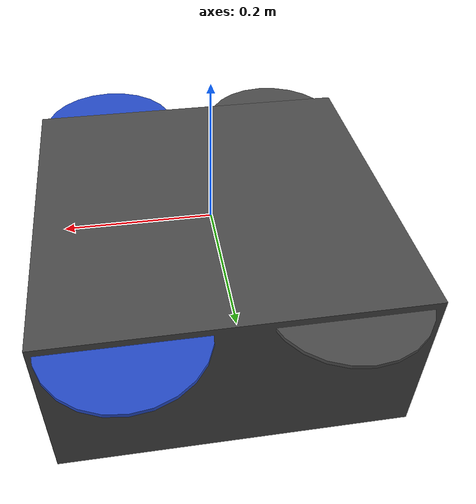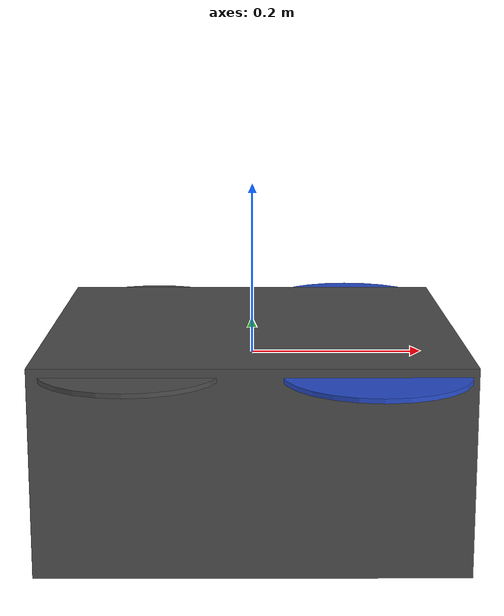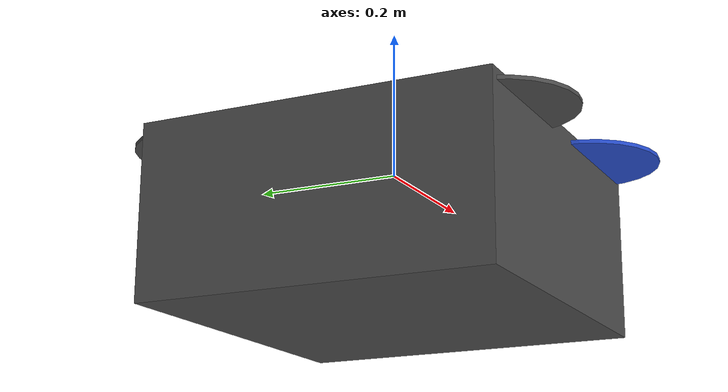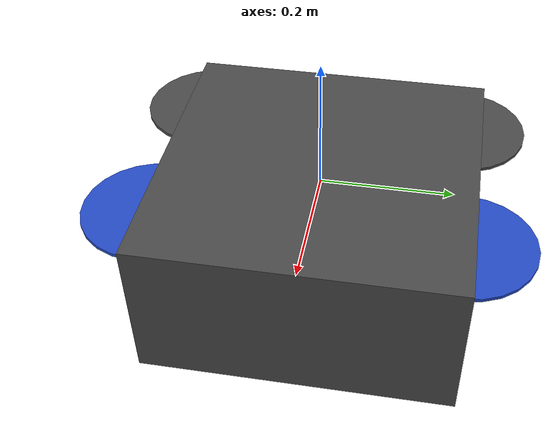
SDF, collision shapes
<?xml version='1.0'?>
<sdf version='1.6'>
  <model name='iris_with_lidar'>
    <pose>0 0 0 0 0 0</pose>
      <include>
        <uri>model://iris_with_standoffs</uri>
        <pose>0 0 0 0 0 0</pose>
      </include>

      <!-- Kinect Payload -->
      <include>
        <uri>model://kinect_depth</uri>
        <pose>0.03 0 -0.05 0 0.6 0</pose>
      </include>
      <joint name="cam_mount" type="fixed">
        <child>kinect::camera_link</child>
        <parent>iris::base_link</parent>
        <axis>
          <xyz>0 0 1</xyz>
          <limit>
            <upper>0</upper>
            <lower>0</lower>
          </limit>
        </axis>
      </joint>

      <!-- For Another Lidar Payload -->
    </model>
  </sdf>

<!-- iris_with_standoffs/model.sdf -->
<sdf version='1.6'>
  <model name='iris'>
    <pose>0 0 0.194923 0 0 0</pose>
    <link name='base_link'>
      <velocity_decay>
        <linear>0.0</linear>
        <angular>0.0</angular>
      </velocity_decay>
      <inertial>
        <pose>0 0 0 0 0 0</pose>
        <mass>1.5</mass>
        <inertia>
          <ixx>0.008</ixx>
          <ixy>0</ixy>
          <ixz>0</ixz>
          <iyy>0.015</iyy>
          <iyz>0</iyz>
          <izz>0.017</izz>
        </inertia>
      </inertial>
      <collision name='base_link_collision'>
        <pose>0 0 -0.08 0 0 0</pose>
        <geometry>
          <box>
            <size>0.47 0.47 0.23</size>
          </box>
        </geometry>
        <surface>
          <contact>
            <ode>
              <max_vel>100.0</max_vel>
              <min_depth>0.001</min_depth>
            </ode>
          </contact>
          <friction>
            <ode>
              <mu>1.0</mu>
              <mu2>1.0</mu2>
            </ode>
          </friction>
        </surface>
      </collision>
      <visual name='base_link_visual'>
        <geometry>
          <mesh>
            <uri>model://iris_with_standoffs/meshes/iris.dae</uri>
          </mesh>
        </geometry>
        <material>
          <script>
            <name>Gazebo/DarkGrey</name>
          </script>
        </material>
      </visual>

      <visual name='front_left_leg_visual'>
        <pose>0.123 0.22 -0.11 0 0 0</pose>
        <geometry>
          <cylinder>
            <radius>0.005</radius>
            <length>0.17</length>
          </cylinder>
        </geometry>
        <material>
          <script>
            <name>Gazebo/FlatBlack</name>
            <uri>file://media/materials/scripts/gazebo.material</uri>
          </script>
        </material>
      </visual>
      <visual name='front_right_leg_visual'>
        <pose>0.123 -0.22 -0.11 0 0 0</pose>
        <geometry>
          <cylinder>
            <radius>0.005</radius>
            <length>0.17</length>
          </cylinder>
        </geometry>
        <material>
          <script>
            <name>Gazebo/FlatBlack</name>
            <uri>file://media/materials/scripts/gazebo.material</uri>
          </script>
        </material>
      </visual>
      <visual name='rear_left_leg_visual'>
        <pose>-0.140 0.21 -0.11 0 0 0</pose>
        <geometry>
          <cylinder>
            <radius>0.005</radius>
            <length>0.17</length>
          </cylinder>
        </geometry>
        <material>
          <script>
            <name>Gazebo/FlatBlack</name>
            <uri>file://media/materials/scripts/gazebo.material</uri>
          </script>
        </material>
      </visual>
      <visual name='rear_right_leg_visual'>
        <pose>-0.140 -0.21 -0.11 0 0 0</pose>
        <geometry>
          <cylinder>
            <radius>0.005</radius>
            <length>0.17</length>
          </cylinder>
        </geometry>
        <material>
          <script>
            <name>Gazebo/FlatBlack</name>
            <uri>file://media/materials/scripts/gazebo.material</uri>
          </script>
        </material>
      </visual>
    </link>
    <link name='iris/ground_truth/odometry_sensorgt_link'>
      <pose>0 0 0 0 -0 0</pose>
      <inertial>
        <pose>0 0 0 0 -0 0</pose>
        <mass>0.15</mass>
        <inertia>
          <ixx>0.0001</ixx>
          <ixy>0</ixy>
          <ixz>0</ixz>
          <iyy>0.0002</iyy>
          <iyz>0</iyz>
          <izz>0.0002</izz>
        </inertia>
      </inertial>
    </link>
    <joint name='iris/ground_truth/odometry_sensorgt_joint' type='revolute'>
      <child>iris/ground_truth/odometry_sensorgt_link</child>
      <parent>base_link</parent>
      <axis>
        <xyz>0 0 1</xyz>
        <limit>
          <lower>0</lower>
          <upper>0</upper>
          <effort>0</effort>
          <velocity>0</velocity>
        </limit>
        <dynamics>
          <damping>1.0</damping>
        </dynamics>
        <use_parent_model_frame>1</use_parent_model_frame>
      </axis>
      <physics>
        <ode>
          <implicit_spring_damper>1</implicit_spring_damper>
        </ode>
      </physics>
    </joint>
    <link name='iris/imu_link'>
      <inertial>
        <pose>0 0 0 0 0 0</pose>
        <mass>0.15</mass>
        <inertia>
          <ixx>0.00001</ixx>
          <ixy>0</ixy>
          <ixz>0</ixz>
          <iyy>0.00002</iyy>
          <iyz>0</iyz>
          <izz>0.00002</izz>
        </inertia>
      </inertial>
      <sensor name="imu_sensor" type="imu">
        <pose>0 0 0 3.141593 0 0</pose>
        <always_on>1</always_on>
        <update_rate>1000.0</update_rate>
      </sensor>
    </link>
    <joint name='iris/imu_joint' type='revolute'>
      <child>iris/imu_link</child>
      <parent>base_link</parent>
      <axis>
        <xyz>0 0 1</xyz>
        <limit>
          <lower>0</lower>
          <upper>0</upper>
          <effort>0</effort>
          <velocity>0</velocity>
        </limit>
        <dynamics>
          <damping>1.0</damping>
        </dynamics>
        <use_parent_model_frame>1</use_parent_model_frame>
      </axis>
      <physics>
        <ode>
          <implicit_spring_damper>1</implicit_spring_damper>
        </ode>
      </physics>
    </joint>
    <link name='rotor_0'>
      <pose>0.13 -0.22 0.023 0 -0 0</pose>
      <inertial>
        <pose>0 0 0 0 -0 0</pose>
        <mass>0.025</mass>
        <inertia>
          <ixx>9.75e-06</ixx>
          <ixy>0</ixy>
          <ixz>0</ixz>
          <iyy>0.000166704</iyy>
          <iyz>0</iyz>
          <izz>0.000166704</izz>
        </inertia>
      </inertial>
      <collision name='rotor_0_collision'>
        <pose>0 0 0 0 -0 0</pose>
        <geometry>
          <cylinder>
            <length>0.005</length>
            <radius>0.1</radius>
          </cylinder>
        </geometry>
        <surface>
          <contact>
            <ode/>
          </contact>
          <friction>
            <ode/>
          </friction>
        </surface>
      </collision>
      <visual name='rotor_0_visual'>
        <pose>0 0 0 0 -0 0</pose>
        <geometry>
          <mesh>
            <scale>1 1 1</scale>
            <uri>model://iris_with_standoffs/meshes/iris_prop_ccw.dae</uri>
          </mesh>
        </geometry>
        <material>
          <script>
            <name>Gazebo/Blue</name>
            <uri>__default__</uri>
          </script>
        </material>
      </visual>
      <gravity>1</gravity>
      <velocity_decay/>
      <self_collide>0</self_collide>
    </link>
    <joint name='rotor_0_joint' type='revolute'>
      <child>rotor_0</child>
      <parent>base_link</parent>
      <axis>
        <xyz>0 0 1</xyz>
        <limit>
          <lower>-1e+16</lower>
          <upper>1e+16</upper>
        </limit>
        <dynamics>
          <damping>0.004</damping>
        </dynamics>
        <use_parent_model_frame>1</use_parent_model_frame>
      </axis>
      <physics>
        <ode>
          <implicit_spring_damper>1</implicit_spring_damper>
        </ode>
      </physics>
    </joint>
    <link name='rotor_1'>
      <pose>-0.13 0.2 0.023 0 -0 0</pose>
      <inertial>
        <pose>0 0 0 0 -0 0</pose>
        <mass>0.025</mass>
        <inertia>
          <ixx>9.75e-06</ixx>
          <ixy>0</ixy>
          <ixz>0</ixz>
          <iyy>0.000166704</iyy>
          <iyz>0</iyz>
          <izz>0.000166704</izz>
        </inertia>
      </inertial>
      <collision name='rotor_1_collision'>
        <pose>0 0 0 0 -0 0</pose>
        <geometry>
          <cylinder>
            <length>0.005</length>
            <radius>0.1</radius>
          </cylinder>
        </geometry>
        <surface>
          <contact>
            <ode/>
          </contact>
          <friction>
            <ode/>
          </friction>
        </surface>
      </collision>
      <visual name='rotor_1_visual'>
        <pose>0 0 0 0 -0 0</pose>
        <geometry>
          <mesh>
            <scale>1 1 1</scale>
            <uri>model://iris_with_standoffs/meshes/iris_prop_ccw.dae</uri>
          </mesh>
        </geometry>
        <material>
          <script>
            <name>Gazebo/DarkGrey</name>
            <uri>__default__</uri>
          </script>
        </material>
      </visual>
      <gravity>1</gravity>
      <velocity_decay/>
      <self_collide>0</self_collide>
    </link>
    <joint name='rotor_1_joint' type='revolute'>
      <child>rotor_1</child>
      <parent>base_link</parent>
      <axis>
        <xyz>0 0 1</xyz>
        <limit>
          <lower>-1e+16</lower>
          <upper>1e+16</upper>
        </limit>
        <dynamics>
          <damping>0.004</damping>
        </dynamics>
        <use_parent_model_frame>1</use_parent_model_frame>
      </axis>
      <physics>
        <ode>
          <implicit_spring_damper>1</implicit_spring_damper>
        </ode>
      </physics>
    </joint>
    <link name='rotor_2'>
      <pose>0.13 0.22 0.023 0 -0 0</pose>
      <inertial>
        <pose>0 0 0 0 -0 0</pose>
        <mass>0.025</mass>
        <inertia>
          <ixx>9.75e-06</ixx>
          <ixy>0</ixy>
          <ixz>0</ixz>
          <iyy>0.000166704</iyy>
          <iyz>0</iyz>
          <izz>0.000166704</izz>
        </inertia>
      </inertial>
      <collision name='rotor_2_collision'>
        <pose>0 0 0 0 -0 0</pose>
        <geometry>
          <cylinder>
            <length>0.005</length>
            <radius>0.1</radius>
          </cylinder>
        </geometry>
        <surface>
          <contact>
            <ode/>
          </contact>
          <friction>
            <ode/>
          </friction>
        </surface>
      </collision>
      <visual name='rotor_2_visual'>
        <pose>0 0 0 0 -0 0</pose>
        <geometry>
          <mesh>
            <scale>1 1 1</scale>
            <uri>model://iris_with_standoffs/meshes/iris_prop_cw.dae</uri>
          </mesh>
        </geometry>
        <material>
          <script>
            <name>Gazebo/Blue</name>
            <uri>__default__</uri>
          </script>
        </material>
      </visual>
      <gravity>1</gravity>
      <velocity_decay/>
      <self_collide>0</self_collide>
    </link>
    <joint name='rotor_2_joint' type='revolute'>
      <child>rotor_2</child>
      <parent>base_link</parent>
      <axis>
        <xyz>0 0 1</xyz>
        <limit>
          <lower>-1e+16</lower>
          <upper>1e+16</upper>
        </limit>
        <dynamics>
          <damping>0.004</damping>
        </dynamics>
        <use_parent_model_frame>1</use_parent_model_frame>
      </axis>
      <physics>
        <ode>
          <implicit_spring_damper>1</implicit_spring_damper>
        </ode>
      </physics>
    </joint>
    <link name='rotor_3'>
      <pose>-0.13 -0.2 0.023 0 -0 0</pose>
      <inertial>
        <pose>0 0 0 0 -0 0</pose>
        <mass>0.025</mass>
        <inertia>
          <ixx>9.75e-06</ixx>
          <ixy>0</ixy>
          <ixz>0</ixz>
          <iyy>0.000166704</iyy>
          <iyz>0</iyz>
          <izz>0.000166704</izz>
        </inertia>
      </inertial>
      <collision name='rotor_3_collision'>
        <pose>0 0 0 0 -0 0</pose>
        <geometry>
          <cylinder>
            <length>0.005</length>
            <radius>0.1</radius>
          </cylinder>
        </geometry>
        <surface>
          <contact>
            <ode/>
          </contact>
          <friction>
            <ode/>
          </friction>
        </surface>
      </collision>
      <visual name='rotor_3_visual'>
        <pose>0 0 0 0 -0 0</pose>
        <geometry>
          <mesh>
            <scale>1 1 1</scale>
            <uri>model://iris_with_standoffs/meshes/iris_prop_cw.dae</uri>
          </mesh>
        </geometry>
        <material>
          <script>
            <name>Gazebo/DarkGrey</name>
            <uri>__default__</uri>
          </script>
        </material>
      </visual>
      <gravity>1</gravity>
      <velocity_decay/>
      <self_collide>0</self_collide>
    </link>
    <joint name='rotor_3_joint' type='revolute'>
      <child>rotor_3</child>
      <parent>base_link</parent>
      <axis>
        <xyz>0 0 1</xyz>
        <limit>
          <lower>-1e+16</lower>
          <upper>1e+16</upper>
        </limit>
        <dynamics>
          <damping>0.004</damping>
        </dynamics>
        <use_parent_model_frame>1</use_parent_model_frame>
      </axis>
      <physics>
        <ode>
          <implicit_spring_damper>1</implicit_spring_damper>
        </ode>
      </physics>
    </joint>
    <static>0</static>
  </model>
</sdf>

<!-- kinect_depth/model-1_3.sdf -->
<sdf version="1.3">
  <model name="kinect">
    <pose>0 0 0.036 0 0 0</pose>
    <link name="camera_link">
      <inertial>
        <mass>0.1</mass>
      </inertial>

      <collision name="collision">
        <geometry>
          <box>
            <size>0.073000 0.276000 0.072000</size>
          </box>
        </geometry>
      </collision>
      <visual name="visual">
        <geometry>
          <mesh>
            <uri>model://kinect/meshes/kinect.dae</uri>
          </mesh>
        </geometry>
      </visual>
      <sensor name="camera" type="depth">
        <update_rate>20</update_rate>
        <camera>
          <horizontal_fov>1.047198</horizontal_fov>
          <image>
            <width>640</width>
            <height>480</height>
            <format>R8G8B8</format>
          </image>
          <clip>
            <near>0.05</near>
            <far>3</far>
          </clip>
        </camera>
	<plugin name="camera_plugin" filename="libgazebo_ros_openni_kinect.so">
          <baseline>0.2</baseline>
          <alwaysOn>true</alwaysOn>
          <updateRate>0.0</updateRate>
          <cameraName>camera_ir</cameraName>
          <imageTopicName>/camera/depth/image_raw</imageTopicName>
          <cameraInfoTopicName>/camera/depth/camera_info</cameraInfoTopicName>
          <depthImageTopicName>/camera/depth/image_raw</depthImageTopicName>
          <depthImageInfoTopicName>/camera/depth/camera_info</depthImageInfoTopicName>
          <pointCloudTopicName>/camera/depth/points</pointCloudTopicName>
          <frameName>camera_link</frameName>
          <pointCloudCutoff>0.05</pointCloudCutoff>
          <distortionK1>0</distortionK1>
          <distortionK2>0</distortionK2>
          <distortionK3>0</distortionK3>
          <distortionT1>0</distortionT1>
          <distortionT2>0</distortionT2>
          <CxPrime>0</CxPrime>
          <Cx>0</Cx>
          <Cy>0</Cy>
          <focalLength>0</focalLength>
          <hackBaseline>0</hackBaseline>
        </plugin>
      </sensor>
    </link>
  </model>
</sdf>
